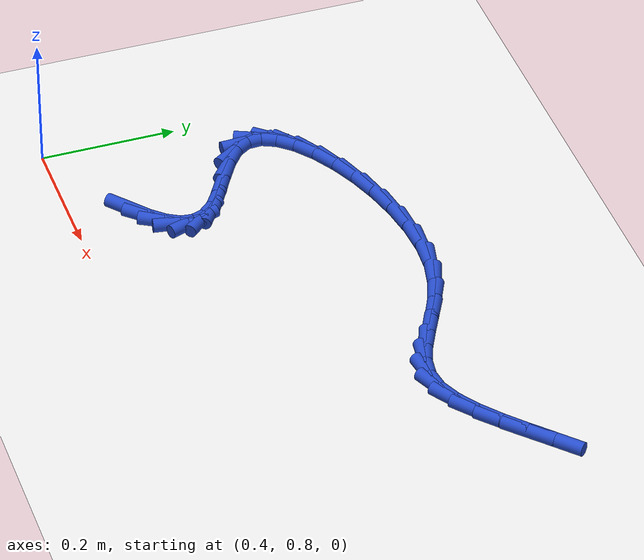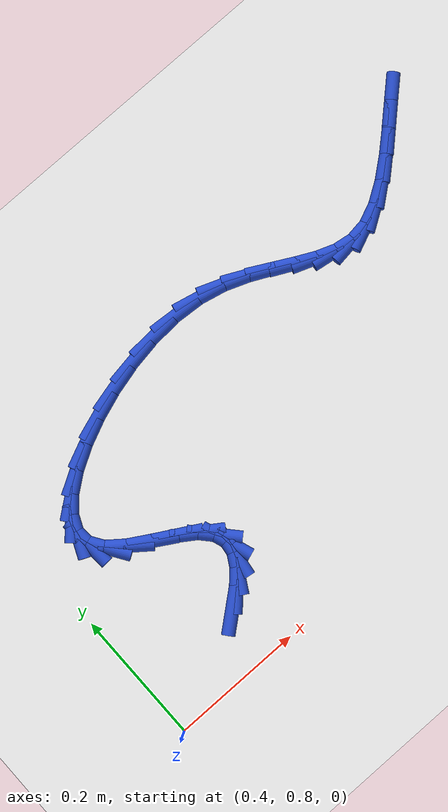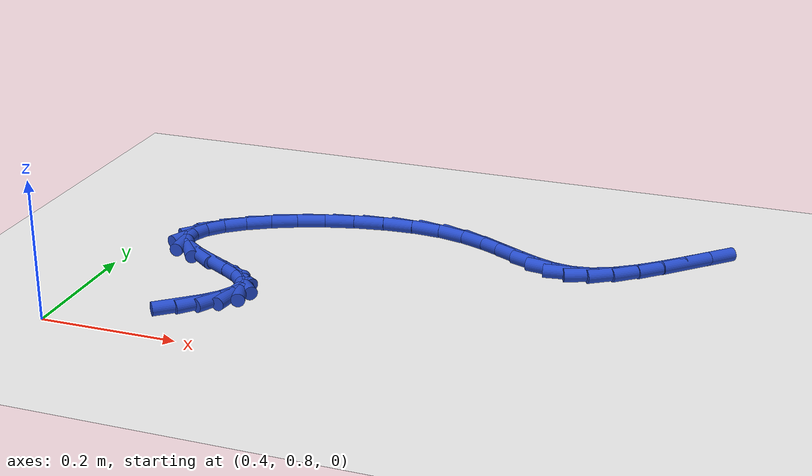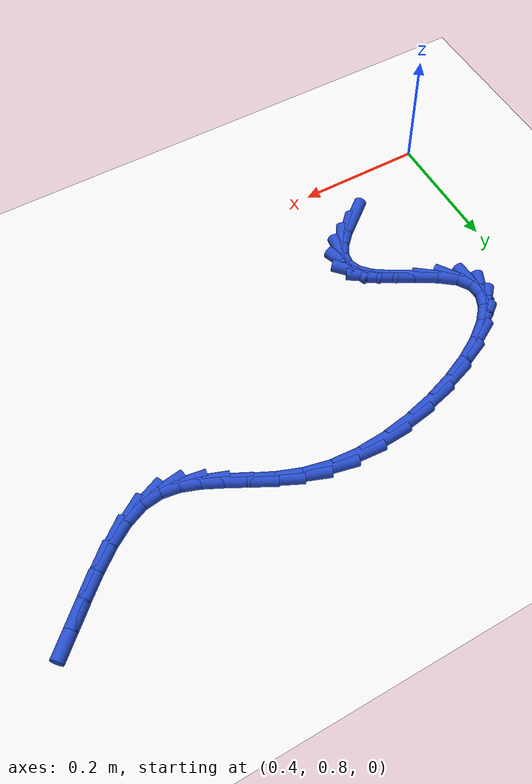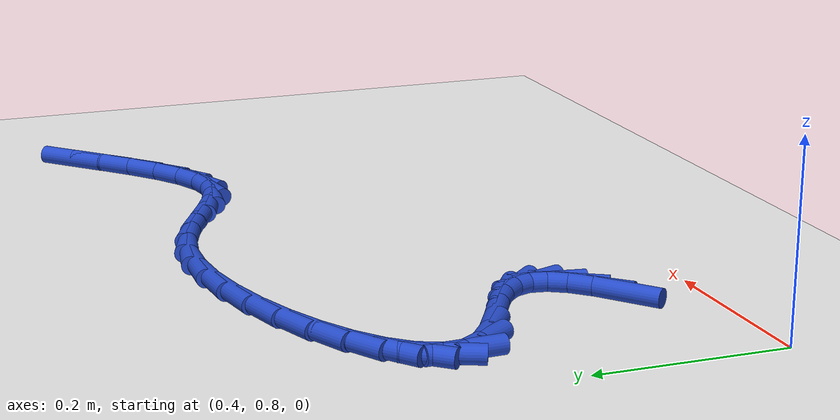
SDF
<sdf version="1.6">
 <world name="default">
  <model name="ground_plane">
   <static>1</static>
   <link name="link">
    <collision name="collision">
     <geometry><plane><normal>0 0 1</normal><size>100 100</size></plane></geometry>
     <surface><friction><ode><mu>100</mu><mu2>50</mu2></ode></friction></surface>
    </collision>
    <visual name="visual">
     <cast_shadows>0</cast_shadows>
     <geometry><plane><normal>0 0 1</normal><size>100 100</size></plane></geometry>
     <material>
      <script><uri>file://media/materials/scripts/gazebo.material</uri><name>Gazebo/WhiteGlow</name></script>
     </material>
    </visual>
   </link>
  </model>
  <model name="line">
   <link name="link_31">
    <pose>0.5654578953022078 0.884660686557567 0.01 0 1.57 0.687883019826923</pose>
    <collision name="collision">
     <geometry><cylinder><radius>0.01</radius><length>0.08</length></cylinder></geometry>
    </collision>
    <visual name="visual">
     <material>
      <script><name>Gazebo/Blue</name><uri>file://media/materials/scripts/gazebo.material</uri></script>
     </material>
     <geometry><cylinder><radius>0.01</radius><length>0.08</length></cylinder></geometry>
    </visual>
   </link>
   <link name="link_32">
    <pose>0.5893263982923668 0.9042754233160819 0.01 0 1.57 0.823701813937166</pose>
    <collision name="collision">
     <geometry><cylinder><radius>0.01</radius><length>0.08</length></cylinder></geometry>
    </collision>
    <visual name="visual">
     <material>
      <script><name>Gazebo/Blue</name><uri>file://media/materials/scripts/gazebo.material</uri></script>
     </material>
     <geometry><cylinder><radius>0.01</radius><length>0.08</length></cylinder></geometry>
    </visual>
   </link>
   <link name="link_33">
    <pose>0.607071734337922 0.9234350457272154 0.01 0 1.57 1.05286436707155</pose>
    <collision name="collision">
     <geometry><cylinder><radius>0.01</radius><length>0.08</length></cylinder></geometry>
    </collision>
    <visual name="visual">
     <material>
      <script><name>Gazebo/Blue</name><uri>file://media/materials/scripts/gazebo.material</uri></script>
     </material>
     <geometry><cylinder><radius>0.01</radius><length>0.08</length></cylinder></geometry>
    </visual>
   </link>
   <link name="link_34">
    <pose>0.6177500884679024 0.9421749486438928 0.01 0 1.57 1.4264798606076436</pose>
    <collision name="collision">
     <geometry><cylinder><radius>0.01</radius><length>0.08</length></cylinder></geometry>
    </collision>
    <visual name="visual">
     <material>
      <script><name>Gazebo/Blue</name><uri>file://media/materials/scripts/gazebo.material</uri></script>
     </material>
     <geometry><cylinder><radius>0.01</radius><length>0.08</length></cylinder></geometry>
    </visual>
   </link>
   <link name="link_35">
    <pose>0.6204176457113377 0.9605305269190401 0.01 0 1.57 -1.234877298194461</pose>
    <collision name="collision">
     <geometry><cylinder><radius>0.01</radius><length>0.08</length></cylinder></geometry>
    </collision>
    <visual name="visual">
     <material>
      <script><name>Gazebo/Blue</name><uri>file://media/materials/scripts/gazebo.material</uri></script>
     </material>
     <geometry><cylinder><radius>0.01</radius><length>0.08</length></cylinder></geometry>
    </visual>
   </link>
   <link name="link_36">
    <pose>0.6141305910972567 0.9785371754055822 0.01 0 1.57 -0.8298698635083949</pose>
    <collision name="collision">
     <geometry><cylinder><radius>0.01</radius><length>0.08</length></cylinder></geometry>
    </collision>
    <visual name="visual">
     <material>
      <script><name>Gazebo/Blue</name><uri>file://media/materials/scripts/gazebo.material</uri></script>
     </material>
     <geometry><cylinder><radius>0.01</radius><length>0.08</length></cylinder></geometry>
    </visual>
   </link>
   <link name="link_37">
    <pose>0.5979451102330804 0.9962302889912633 0.01 0 1.57 -0.5935095443921917</pose>
    <collision name="collision">
     <geometry><cylinder><radius>0.01</radius><length>0.08</length></cylinder></geometry>
    </collision>
    <visual name="visual">
     <material>
      <script><name>Gazebo/Blue</name><uri>file://media/materials/scripts/gazebo.material</uri></script>
     </material>
     <geometry><cylinder><radius>0.01</radius><length>0.08</length></cylinder></geometry>
    </visual>
   </link>
   <link name="link_38">
    <pose>0.5720323019005138 1.0137123788299907 0.01 0 1.57 -0.5156206917234994</pose>
    <collision name="collision">
     <geometry><cylinder><radius>0.01</radius><length>0.08</length></cylinder></geometry>
    </collision>
    <visual name="visual">
     <material>
      <script><name>Gazebo/Blue</name><uri>file://media/materials/scripts/gazebo.material</uri></script>
     </material>
     <geometry><cylinder><radius>0.01</radius><length>0.08</length></cylinder></geometry>
    </visual>
   </link>
   <link name="link_39">
    <pose>0.5409158596136892 1.0313479763955526 0.01 0 1.57 -0.5350662135061496</pose>
    <collision name="collision">
     <geometry><cylinder><radius>0.01</radius><length>0.08</length></cylinder></geometry>
    </collision>
    <visual name="visual">
     <material>
      <script><name>Gazebo/Blue</name><uri>file://media/materials/scripts/gazebo.material</uri></script>
     </material>
     <geometry><cylinder><radius>0.01</radius><length>0.08</length></cylinder></geometry>
    </visual>
   </link>
   <link name="link_40">
    <pose>0.5101815005371514 1.0495655455500494 0.01 0 1.57 -0.6601652004081842</pose>
    <collision name="collision">
     <geometry><cylinder><radius>0.01</radius><length>0.08</length></cylinder></geometry>
    </collision>
    <visual name="visual">
     <material>
      <script><name>Gazebo/Blue</name><uri>file://media/materials/scripts/gazebo.material</uri></script>
     </material>
     <geometry><cylinder><radius>0.01</radius><length>0.08</length></cylinder></geometry>
    </visual>
   </link>
   <link name="link_41">
    <pose>0.48541494183544376 1.0687935501555816 0.01 0 1.57 -0.9895298242675746</pose>
    <collision name="collision">
     <geometry><cylinder><radius>0.01</radius><length>0.08</length></cylinder></geometry>
    </collision>
    <visual name="visual">
     <material>
      <script><name>Gazebo/Blue</name><uri>file://media/materials/scripts/gazebo.material</uri></script>
     </material>
     <geometry><cylinder><radius>0.01</radius><length>0.08</length></cylinder></geometry>
    </visual>
   </link>
   <link name="link_42">
    <pose>0.47187066933684363 1.0894095057613276 0.01 0 1.57 -1.521019702727373</pose>
    <collision name="collision">
     <geometry><cylinder><radius>0.01</radius><length>0.08</length></cylinder></geometry>
    </collision>
    <visual name="visual">
     <material>
      <script><name>Gazebo/Blue</name><uri>file://media/materials/scripts/gazebo.material</uri></script>
     </material>
     <geometry><cylinder><radius>0.01</radius><length>0.08</length></cylinder></geometry>
    </visual>
   </link>
   <link name="link_43">
    <pose>0.47078645560347976 1.111173097590661 0.01 0 1.57 1.1507806061834411</pose>
    <collision name="collision">
     <geometry><cylinder><radius>0.01</radius><length>0.08</length></cylinder></geometry>
    </collision>
    <visual name="visual">
     <material>
      <script><name>Gazebo/Blue</name><uri>file://media/materials/scripts/gazebo.material</uri></script>
     </material>
     <geometry><cylinder><radius>0.01</radius><length>0.08</length></cylinder></geometry>
    </visual>
   </link>
   <link name="link_44">
    <pose>0.48072750543279236 1.1334329301391615 0.01 0 1.57 0.8481830789989516</pose>
    <collision name="collision">
     <geometry><cylinder><radius>0.01</radius><length>0.08</length></cylinder></geometry>
    </collision>
    <visual name="visual">
     <material>
      <script><name>Gazebo/Blue</name><uri>file://media/materials/scripts/gazebo.material</uri></script>
     </material>
     <geometry><cylinder><radius>0.01</radius><length>0.08</length></cylinder></geometry>
    </visual>
   </link>
   <link name="link_45">
    <pose>0.5002106893241229 1.1555301733674623 0.01 0 1.57 0.657734537447775</pose>
    <collision name="collision">
     <geometry><cylinder><radius>0.01</radius><length>0.08</length></cylinder></geometry>
    </collision>
    <visual name="visual">
     <material>
      <script><name>Gazebo/Blue</name><uri>file://media/materials/scripts/gazebo.material</uri></script>
     </material>
     <geometry><cylinder><radius>0.01</radius><length>0.08</length></cylinder></geometry>
    </visual>
   </link>
   <link name="link_46">
    <pose>0.5277528777768132 1.1768059972361982 0.01 0 1.57 0.5257394450936792</pose>
    <collision name="collision">
     <geometry><cylinder><radius>0.01</radius><length>0.08</length></cylinder></geometry>
    </collision>
    <visual name="visual">
     <material>
      <script><name>Gazebo/Blue</name><uri>file://media/materials/scripts/gazebo.material</uri></script>
     </material>
     <geometry><cylinder><radius>0.01</radius><length>0.08</length></cylinder></geometry>
    </visual>
   </link>
   <link name="link_47">
    <pose>0.5618709412902047 1.1966015717060023 0.01 0 1.57 0.42310057324134015</pose>
    <collision name="collision">
     <geometry><cylinder><radius>0.01</radius><length>0.08</length></cylinder></geometry>
    </collision>
    <visual name="visual">
     <material>
      <script><name>Gazebo/Blue</name><uri>file://media/materials/scripts/gazebo.material</uri></script>
     </material>
     <geometry><cylinder><radius>0.01</radius><length>0.08</length></cylinder></geometry>
    </visual>
   </link>
   <link name="link_48">
    <pose>0.6010817503636389 1.2142580667375094 0.01 0 1.57 0.33399759228434717</pose>
    <collision name="collision">
     <geometry><cylinder><radius>0.01</radius><length>0.08</length></cylinder></geometry>
    </collision>
    <visual name="visual">
     <material>
      <script><name>Gazebo/Blue</name><uri>file://media/materials/scripts/gazebo.material</uri></script>
     </material>
     <geometry><cylinder><radius>0.01</radius><length>0.08</length></cylinder></geometry>
    </visual>
   </link>
   <link name="link_49">
    <pose>0.6439021754964571 1.229116652291352 0.01 0 1.57 0.2484331930736362</pose>
    <collision name="collision">
     <geometry><cylinder><radius>0.01</radius><length>0.08</length></cylinder></geometry>
    </collision>
    <visual name="visual">
     <material>
      <script><name>Gazebo/Blue</name><uri>file://media/materials/scripts/gazebo.material</uri></script>
     </material>
     <geometry><cylinder><radius>0.01</radius><length>0.08</length></cylinder></geometry>
    </visual>
   </link>
   <link name="link_50">
    <pose>0.6888490871880016 1.2405184983281652 0.01 0 1.57 0.1584805999678742</pose>
    <collision name="collision">
     <geometry><cylinder><radius>0.01</radius><length>0.08</length></cylinder></geometry>
    </collision>
    <visual name="visual">
     <material>
      <script><name>Gazebo/Blue</name><uri>file://media/materials/scripts/gazebo.material</uri></script>
     </material>
     <geometry><cylinder><radius>0.01</radius><length>0.08</length></cylinder></geometry>
    </visual>
   </link>
   <link name="link_51">
    <pose>0.7344393559376131 1.2478047748085825 0.01 0 1.57 0.05607186617904562</pose>
    <collision name="collision">
     <geometry><cylinder><radius>0.01</radius><length>0.08</length></cylinder></geometry>
    </collision>
    <visual name="visual">
     <material>
      <script><name>Gazebo/Blue</name><uri>file://media/materials/scripts/gazebo.material</uri></script>
     </material>
     <geometry><cylinder><radius>0.01</radius><length>0.08</length></cylinder></geometry>
    </visual>
   </link>
   <link name="link_52">
    <pose>0.779189852244634 1.2503166516932378 0.01 0 1.57 -0.06874651175645971</pose>
    <collision name="collision">
     <geometry><cylinder><radius>0.01</radius><length>0.08</length></cylinder></geometry>
    </collision>
    <visual name="visual">
     <material>
      <script><name>Gazebo/Blue</name><uri>file://media/materials/scripts/gazebo.material</uri></script>
     </material>
     <geometry><cylinder><radius>0.01</radius><length>0.08</length></cylinder></geometry>
    </visual>
   </link>
   <link name="link_53">
    <pose>0.8216174466084052 1.2473952989427648 0.01 0 1.57 -0.2224485323440739</pose>
    <collision name="collision">
     <geometry><cylinder><radius>0.01</radius><length>0.08</length></cylinder></geometry>
    </collision>
    <visual name="visual">
     <material>
      <script><name>Gazebo/Blue</name><uri>file://media/materials/scripts/gazebo.material</uri></script>
     </material>
     <geometry><cylinder><radius>0.01</radius><length>0.08</length></cylinder></geometry>
    </visual>
   </link>
   <link name="link_54">
    <pose>0.860423576662155 1.2386176702272482 0.01 0 1.57 -0.3609227639666346</pose>
    <collision name="collision">
     <geometry><cylinder><radius>0.01</radius><length>0.08</length></cylinder></geometry>
    </collision>
    <visual name="visual">
     <material>
      <script><name>Gazebo/Blue</name><uri>file://media/materials/scripts/gazebo.material</uri></script>
     </material>
     <geometry><cylinder><radius>0.01</radius><length>0.08</length></cylinder></geometry>
    </visual>
   </link>
   <link name="link_55">
    <pose>0.8956791536780627 1.2253102158242453 0.01 0 1.57 -0.45192403354081095</pose>
    <collision name="collision">
     <geometry><cylinder><radius>0.01</radius><length>0.08</length></cylinder></geometry>
    </collision>
    <visual name="visual">
     <material>
      <script><name>Gazebo/Blue</name><uri>file://media/materials/scripts/gazebo.material</uri></script>
     </material>
     <geometry><cylinder><radius>0.01</radius><length>0.08</length></cylinder></geometry>
    </visual>
   </link>
   <link name="link_56">
    <pose>0.9280710133108323 1.2095862267266388 0.01 0 1.57 -0.4875642209382682</pose>
    <collision name="collision">
     <geometry><cylinder><radius>0.01</radius><length>0.08</length></cylinder></geometry>
    </collision>
    <visual name="visual">
     <material>
      <script><name>Gazebo/Blue</name><uri>file://media/materials/scripts/gazebo.material</uri></script>
     </material>
     <geometry><cylinder><radius>0.01</radius><length>0.08</length></cylinder></geometry>
    </visual>
   </link>
   <link name="link_57">
    <pose>0.9582889422901291 1.1935627639127158 0.01 0 1.57 -0.45915456723908177</pose>
    <collision name="collision">
     <geometry><cylinder><radius>0.01</radius><length>0.08</length></cylinder></geometry>
    </collision>
    <visual name="visual">
     <material>
      <script><name>Gazebo/Blue</name><uri>file://media/materials/scripts/gazebo.material</uri></script>
     </material>
     <geometry><cylinder><radius>0.01</radius><length>0.08</length></cylinder></geometry>
    </visual>
   </link>
   <link name="link_58">
    <pose>0.9870227273456179 1.179356888360764 0.01 0 1.57 -0.3522891391559436</pose>
    <collision name="collision">
     <geometry><cylinder><radius>0.01</radius><length>0.08</length></cylinder></geometry>
    </collision>
    <visual name="visual">
     <material>
      <script><name>Gazebo/Blue</name><uri>file://media/materials/scripts/gazebo.material</uri></script>
     </material>
     <geometry><cylinder><radius>0.01</radius><length>0.08</length></cylinder></geometry>
    </visual>
   </link>
   <link name="link_59">
    <pose>1.0149621552069636 1.1690856610490705 0.01 0 1.57 -0.1504457218894979</pose>
    <collision name="collision">
     <geometry><cylinder><radius>0.01</radius><length>0.08</length></cylinder></geometry>
    </collision>
    <visual name="visual">
     <material>
      <script><name>Gazebo/Blue</name><uri>file://media/materials/scripts/gazebo.material</uri></script>
     </material>
     <geometry><cylinder><radius>0.01</radius><length>0.08</length></cylinder></geometry>
    </visual>
   </link>
   <link name="link_60">
    <pose>1.0427970126038315 1.164866142955923 0.01 0 1.57 0.1370469194420273</pose>
    <collision name="collision">
     <geometry><cylinder><radius>0.01</radius><length>0.08</length></cylinder></geometry>
    </collision>
    <visual name="visual">
     <material>
      <script><name>Gazebo/Blue</name><uri>file://media/materials/scripts/gazebo.material</uri></script>
     </material>
     <geometry><cylinder><radius>0.01</radius><length>0.08</length></cylinder></geometry>
    </visual>
   </link>
   <link name="link_61">
    <pose>1.0712095542637672 1.1687845567329234 0.01 0 1.57 0.4055199991153515</pose>
    <collision name="collision">
     <geometry><cylinder><radius>0.01</radius><length>0.08</length></cylinder></geometry>
    </collision>
    <visual name="visual">
     <material>
      <script><name>Gazebo/Blue</name><uri>file://media/materials/scripts/gazebo.material</uri></script>
     </material>
     <geometry><cylinder><radius>0.01</radius><length>0.08</length></cylinder></geometry>
    </visual>
   </link>
   <link name="link_62">
    <pose>1.1004990270621036 1.1813589734190637 0.01 0 1.57 0.5770092240264024</pose>
    <collision name="collision">
     <geometry><cylinder><radius>0.01</radius><length>0.08</length></cylinder></geometry>
    </collision>
    <visual name="visual">
     <material>
      <script><name>Gazebo/Blue</name><uri>file://media/materials/scripts/gazebo.material</uri></script>
     </material>
     <geometry><cylinder><radius>0.01</radius><length>0.08</length></cylinder></geometry>
    </visual>
   </link>
   <link name="link_63">
    <pose>1.1304075750854832 1.200826514377163 0.01 0 1.57 0.6795114373392805</pose>
    <collision name="collision">
     <geometry><cylinder><radius>0.01</radius><length>0.08</length></cylinder></geometry>
    </collision>
    <visual name="visual">
     <material>
      <script><name>Gazebo/Blue</name><uri>file://media/materials/scripts/gazebo.material</uri></script>
     </material>
     <geometry><cylinder><radius>0.01</radius><length>0.08</length></cylinder></geometry>
    </visual>
   </link>
   <link name="link_64">
    <pose>1.1606334517151176 1.2252445989610576 0.01 0 1.57 0.7366154509510277</pose>
    <collision name="collision">
     <geometry><cylinder><radius>0.01</radius><length>0.08</length></cylinder></geometry>
    </collision>
    <visual name="visual">
     <material>
      <script><name>Gazebo/Blue</name><uri>file://media/materials/scripts/gazebo.material</uri></script>
     </material>
     <geometry><cylinder><radius>0.01</radius><length>0.08</length></cylinder></geometry>
    </visual>
   </link>
   <link name="link_65">
    <pose>1.1908749103322191 1.252670646524584 0.01 0 1.57 0.7603572713064857</pose>
    <collision name="collision">
     <geometry><cylinder><radius>0.01</radius><length>0.08</length></cylinder></geometry>
    </collision>
    <visual name="visual">
     <material>
      <script><name>Gazebo/Blue</name><uri>file://media/materials/scripts/gazebo.material</uri></script>
     </material>
     <geometry><cylinder><radius>0.01</radius><length>0.08</length></cylinder></geometry>
    </visual>
   </link>
   <link name="link_66">
    <pose>1.2208302043179997 1.281162076421579 0.01 0 1.57 0.754640904145222</pose>
    <collision name="collision">
     <geometry><cylinder><radius>0.01</radius><length>0.08</length></cylinder></geometry>
    </collision>
    <visual name="visual">
     <material>
      <script><name>Gazebo/Blue</name><uri>file://media/materials/scripts/gazebo.material</uri></script>
     </material>
     <geometry><cylinder><radius>0.01</radius><length>0.08</length></cylinder></geometry>
    </visual>
   </link>
  </model>
 </world>
</sdf>
